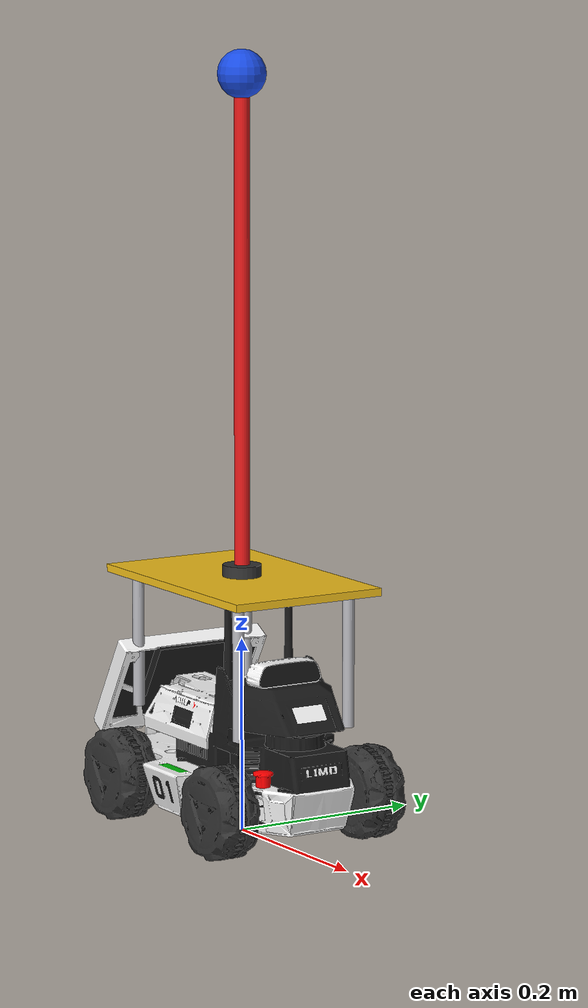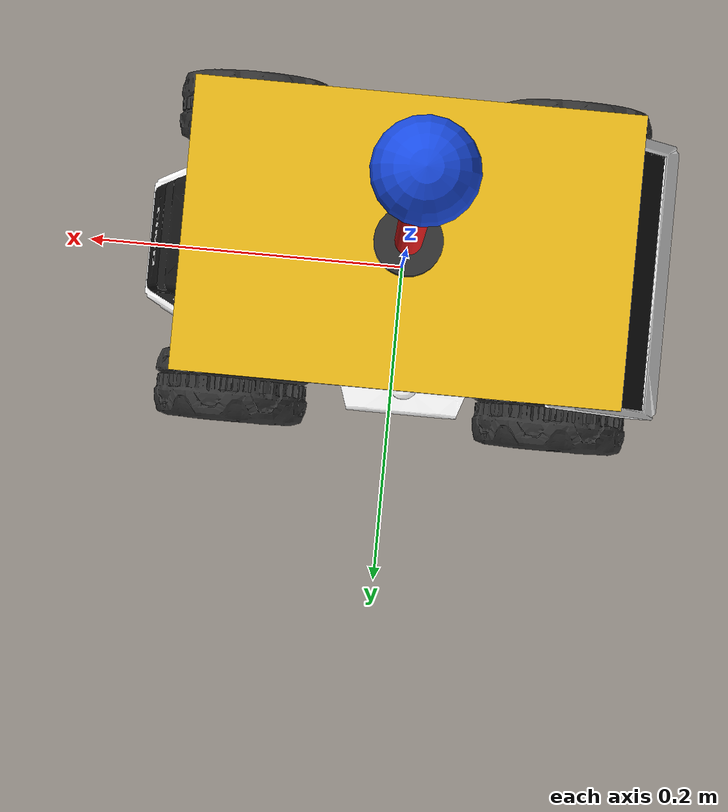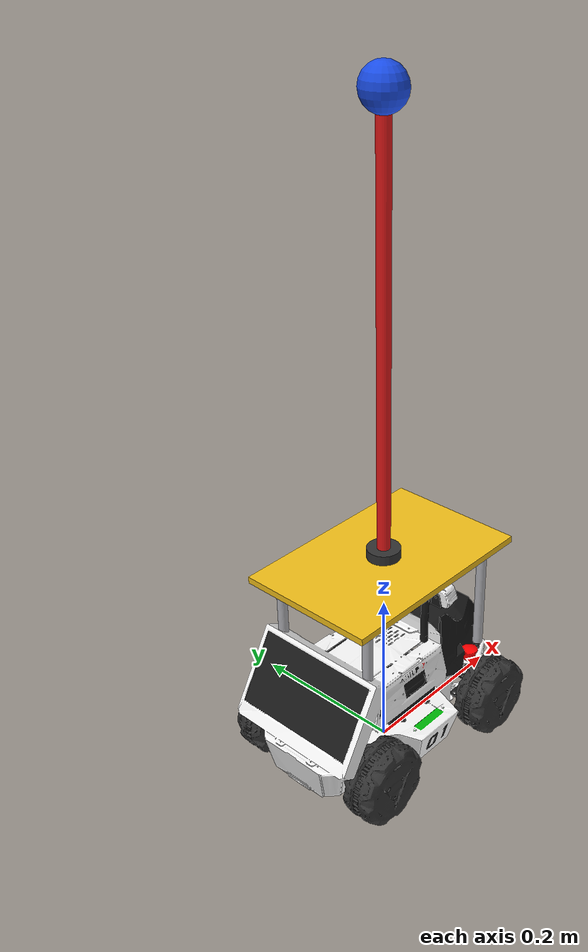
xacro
<?xml version="1.0"?>
<robot xmlns:xacro="http://www.ros.org/wiki/xacro" xmlns:gz="http://gazebosim.org/schema" name="omni_pendulum">

  <xacro:property name="M_PI" value="3.14159265"/>
  <xacro:property name="mesh_dir" value="file://$(find omni_pendulum_sim)/meshes/limo"/>

  <!-- LIMO geometry (from limo_four_diff.xacro) -->
  <xacro:property name="base_x_size" value="0.13"/>
  <xacro:property name="base_y_size" value="0.12"/>
  <xacro:property name="base_z_size" value="0.1"/>
  <xacro:property name="base_mass" value="2.1557"/>
  <xacro:property name="base_height" value="0.15"/>
  <xacro:property name="wheelbase" value="0.2"/>
  <xacro:property name="track" value="0.13"/>
  <xacro:property name="wheel_vertical_offset" value="-0.10"/>
  <xacro:property name="wheel_length" value="0.045"/>
  <xacro:property name="wheel_radius" value="0.045"/>
  <xacro:property name="wheel_mass" value="0.5"/>
  <!-- Height of the LIMO's top surface at the centre of the body, measured from the mesh -->
  <xacro:property name="body_top_height" value="0.1455"/>

  <!-- Flat platform on four posts, clearing the LIMO's sloped top cover (peak 0.2535 m) -->
  <xacro:property name="platform_top_height" value="0.266"/>
  <xacro:property name="platform_x_size" value="0.26"/>
  <xacro:property name="platform_y_size" value="0.17"/>
  <xacro:property name="platform_thickness" value="0.008"/>
  <xacro:property name="platform_mass" value="0.2"/>
  <xacro:property name="post_x" value="0.10"/>
  <xacro:property name="post_y" value="0.065"/>
  <xacro:property name="post_radius" value="0.006"/>
  <xacro:property name="post_bottom_height" value="0.12"/>

  <!-- Pendulum: thin rod with a ball on top -->
  <xacro:property name="mount_thickness" value="0.012"/>
  <xacro:property name="rod_length" value="0.5"/>
  <xacro:property name="rod_radius" value="0.008"/>
  <xacro:property name="rod_mass" value="0.1"/>
  <xacro:property name="bob_radius" value="0.025"/>
  <xacro:property name="bob_mass" value="0.1"/>

  <link name="base_footprint"/>

  <joint name="base_joint" type="fixed">
    <parent link="base_footprint"/>
    <child link="base_link"/>
    <origin xyz="0 0 ${base_height}" rpy="0 0 0"/>
  </joint>

  <link name="base_link">
    <inertial>
      <mass value="${base_mass}"/>
      <inertia ixx="${base_mass * (base_y_size**2 + base_z_size**2) / 12}" ixy="0" ixz="0"
               iyy="${base_mass * (base_x_size**2 + base_z_size**2) / 12}" iyz="0"
               izz="${base_mass * (base_x_size**2 + base_y_size**2) / 12}"/>
    </inertial>
    <visual>
      <origin xyz="0 0 ${-base_height}" rpy="0 0 ${M_PI / 2}"/>
      <geometry><mesh filename="${mesh_dir}/limo_base_lite.dae"/></geometry>
    </visual>
    <!-- Box sits flush with the body's top surface so it never touches the pendulum -->
    <collision>
      <origin xyz="0 0 ${body_top_height - base_height - 0.04}"/>
      <geometry><box size="${base_x_size} ${base_y_size} 0.08"/></geometry>
    </collision>
  </link>

  <xacro:macro name="mecanum_wheel" params="prefix x_reflect y_reflect fdir">
    <link name="${prefix}_wheel_link">
      <inertial>
        <origin xyz="0 ${wheel_length / 2} 0"/>
        <mass value="${wheel_mass}"/>
        <inertia ixx="${wheel_mass * (3 * wheel_radius**2 + wheel_length**2) / 12}" ixy="0" ixz="0"
                 iyy="${wheel_mass * wheel_radius**2 / 2}" iyz="0"
                 izz="${wheel_mass * (3 * wheel_radius**2 + wheel_length**2) / 12}"/>
      </inertial>
      <visual>
        <geometry><mesh filename="${mesh_dir}/limo_wheel_lite.dae"/></geometry>
      </visual>
      <collision>
        <origin xyz="0 ${wheel_length / 2} 0" rpy="${M_PI / 2} 0 0"/>
        <geometry><cylinder radius="${wheel_radius}" length="${wheel_length}"/></geometry>
      </collision>
    </link>

    <!-- Right wheels are flipped so the mesh faces outward; the axis flips with
         them, so positive joint velocity always drives the robot forward -->
    <joint name="${prefix}_wheel_joint" type="continuous">
      <parent link="base_link"/>
      <child link="${prefix}_wheel_link"/>
      <origin xyz="${x_reflect * wheelbase / 2} ${y_reflect * track / 2} ${wheel_vertical_offset}"
              rpy="${(1 - y_reflect) / 2 * M_PI} 0 0"/>
      <axis xyz="0 ${y_reflect} 0"/>
    </joint>

    <gazebo reference="${prefix}_wheel_link">
      <collision>
        <surface>
          <friction>
            <ode>
              <mu>1.0</mu>
              <mu2>0.0</mu2>
              <fdir1 gz:expressed_in="base_footprint">${fdir}</fdir1>
            </ode>
          </friction>
        </surface>
      </collision>
    </gazebo>
  </xacro:macro>

  <xacro:mecanum_wheel prefix="front_left" x_reflect="1" y_reflect="1" fdir="1 -1 0"/>
  <xacro:mecanum_wheel prefix="front_right" x_reflect="1" y_reflect="-1" fdir="1 1 0"/>
  <xacro:mecanum_wheel prefix="rear_left" x_reflect="-1" y_reflect="1" fdir="1 1 0"/>
  <xacro:mecanum_wheel prefix="rear_right" x_reflect="-1" y_reflect="-1" fdir="1 -1 0"/>

  <!-- Platform: origin at the centre of the plate's top surface -->
  <xacro:property name="post_length" value="${platform_top_height - platform_thickness - post_bottom_height}"/>
  <xacro:macro name="platform_post" params="x y">
    <visual>
      <origin xyz="${x} ${y} ${-platform_thickness - post_length / 2}"/>
      <geometry><cylinder radius="${post_radius}" length="${post_length}"/></geometry>
      <material name="post_mat"><color rgba="0.7 0.7 0.72 1.0"/></material>
    </visual>
  </xacro:macro>

  <link name="platform_link">
    <inertial>
      <origin xyz="0 0 ${-platform_thickness / 2}"/>
      <mass value="${platform_mass}"/>
      <inertia ixx="${platform_mass * platform_y_size**2 / 12}" ixy="0" ixz="0"
               iyy="${platform_mass * platform_x_size**2 / 12}" iyz="0"
               izz="${platform_mass * (platform_x_size**2 + platform_y_size**2) / 12}"/>
    </inertial>
    <visual>
      <origin xyz="0 0 ${-platform_thickness / 2}"/>
      <geometry><box size="${platform_x_size} ${platform_y_size} ${platform_thickness}"/></geometry>
      <material name="platform_mat"><color rgba="0.95 0.75 0.1 1.0"/></material>
    </visual>
    <collision>
      <origin xyz="0 0 ${-platform_thickness / 2}"/>
      <geometry><box size="${platform_x_size} ${platform_y_size} ${platform_thickness}"/></geometry>
    </collision>
    <xacro:platform_post x="${post_x}" y="${post_y}"/>
    <xacro:platform_post x="${post_x}" y="${-post_y}"/>
    <xacro:platform_post x="${-post_x}" y="${post_y}"/>
    <xacro:platform_post x="${-post_x}" y="${-post_y}"/>
  </link>

  <joint name="platform_joint" type="fixed">
    <parent link="base_link"/>
    <child link="platform_link"/>
    <origin xyz="0 0 ${platform_top_height - base_height}"/>
  </joint>

  <!-- Pendulum mount: a small puck on the platform; the pivot is on top of it -->
  <link name="pendulum_mount">
    <inertial>
      <mass value="0.05"/>
      <inertia ixx="0.00001" ixy="0" ixz="0" iyy="0.00001" iyz="0" izz="0.00001"/>
    </inertial>
    <visual>
      <origin xyz="0 0 ${-mount_thickness / 2}"/>
      <geometry><cylinder radius="0.02" length="${mount_thickness}"/></geometry>
      <material name="mount_mat"><color rgba="0.2 0.2 0.2 1.0"/></material>
    </visual>
  </link>

  <joint name="pendulum_mount_joint" type="fixed">
    <parent link="platform_link"/>
    <child link="pendulum_mount"/>
    <origin xyz="0 0 ${mount_thickness}"/>
  </joint>

  <!-- Pitch Joint: positive angle tips the pendulum toward +X -->
  <joint name="pendulum_pitch_joint" type="revolute">
    <parent link="pendulum_mount"/>
    <child link="dummy_pitch_link"/>
    <origin xyz="0 0 0" rpy="0 0 0"/>
    <axis xyz="0 1 0"/>
    <limit lower="-1.57" upper="1.57" effort="10.0" velocity="10.0"/>
    <dynamics damping="0.0001" friction="0.0"/>
  </joint>

  <link name="dummy_pitch_link">
    <inertial>
      <mass value="0.001"/>
      <inertia ixx="0.00001" ixy="0" ixz="0" iyy="0.00001" iyz="0" izz="0.00001"/>
    </inertial>
  </link>

  <!-- Roll Joint: positive angle tips the pendulum toward -Y -->
  <joint name="pendulum_roll_joint" type="revolute">
    <parent link="dummy_pitch_link"/>
    <child link="pendulum_link"/>
    <origin xyz="0 0 0" rpy="0 0 0"/>
    <axis xyz="1 0 0"/>
    <limit lower="-1.57" upper="1.57" effort="10.0" velocity="10.0"/>
    <dynamics damping="0.0001" friction="0.0"/>
  </joint>

  <!-- Rod + ball combined into one rigid link; inertia is about the combined COM -->
  <xacro:property name="pend_mass" value="${rod_mass + bob_mass}"/>
  <xacro:property name="pend_com" value="${(rod_mass * rod_length / 2 + bob_mass * rod_length) / pend_mass}"/>
  <xacro:property name="pend_ixx" value="${rod_mass * rod_length**2 / 3 + bob_mass * rod_length**2
                                          + 0.4 * bob_mass * bob_radius**2 - pend_mass * pend_com**2}"/>
  <link name="pendulum_link">
    <inertial>
      <origin xyz="0 0 ${pend_com}"/>
      <mass value="${pend_mass}"/>
      <inertia ixx="${pend_ixx}" ixy="0" ixz="0" iyy="${pend_ixx}" iyz="0"
               izz="${rod_mass * rod_radius**2 / 2 + 0.4 * bob_mass * bob_radius**2}"/>
    </inertial>
    <visual>
      <origin xyz="0 0 ${rod_length / 2}"/>
      <geometry><cylinder radius="${rod_radius}" length="${rod_length}"/></geometry>
      <material name="rod_mat"><color rgba="0.9 0.1 0.1 1.0"/></material>
    </visual>
    <visual>
      <origin xyz="0 0 ${rod_length}"/>
      <geometry><sphere radius="${bob_radius}"/></geometry>
      <material name="bob_mat"><color rgba="0.1 0.3 0.9 1.0"/></material>
    </visual>
    <collision>
      <origin xyz="0 0 ${rod_length / 2}"/>
      <geometry><cylinder radius="${rod_radius}" length="${rod_length}"/></geometry>
    </collision>
    <collision>
      <origin xyz="0 0 ${rod_length}"/>
      <geometry><sphere radius="${bob_radius}"/></geometry>
    </collision>
  </link>

  <!-- Gazebo Plugins -->
  <gazebo>
    <plugin filename="gz-sim-mecanum-drive-system" name="gz::sim::systems::MecanumDrive">
      <front_left_joint>front_left_wheel_joint</front_left_joint>
      <front_right_joint>front_right_wheel_joint</front_right_joint>
      <back_left_joint>rear_left_wheel_joint</back_left_joint>
      <back_right_joint>rear_right_wheel_joint</back_right_joint>
      <wheel_separation>${track + wheel_length}</wheel_separation>
      <wheel_base>${wheelbase}</wheel_base>
      <wheel_radius>${wheel_radius}</wheel_radius>
      <topic>/cmd_vel</topic>
      <odom_topic>/odom</odom_topic>
      <tf_topic>/tf</tf_topic>
      <frame_id>odom</frame_id>
      <child_frame_id>base_footprint</child_frame_id>
    </plugin>

    <plugin filename="gz-sim-joint-state-publisher-system" name="gz::sim::systems::JointStatePublisher">
      <topic>/joint_states</topic>
    </plugin>

    <!-- True pose/velocity of the robot (the mecanum odometry above is computed
         from wheel speeds and cannot see wheel slip) -->
    <plugin filename="gz-sim-odometry-publisher-system" name="gz::sim::systems::OdometryPublisher">
      <odom_topic>/ground_truth/odom</odom_topic>
      <odom_frame>world</odom_frame>
      <robot_base_frame>base_footprint</robot_base_frame>
      <odom_publish_frequency>100</odom_publish_frequency>
      <dimensions>2</dimensions>
      <tf_topic>/ground_truth/tf</tf_topic>
    </plugin>
  </gazebo>
</robot>
